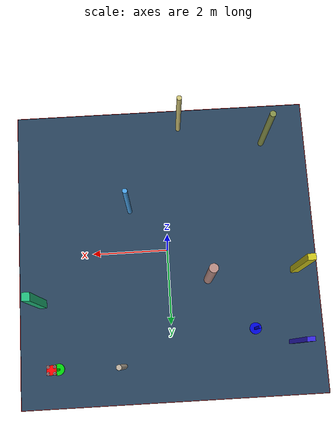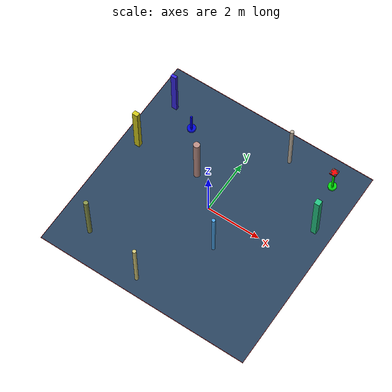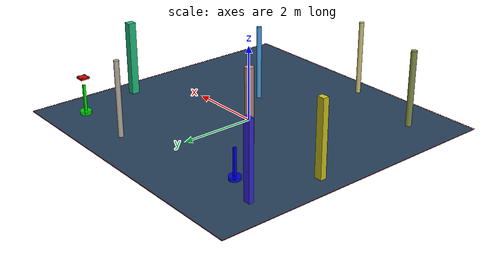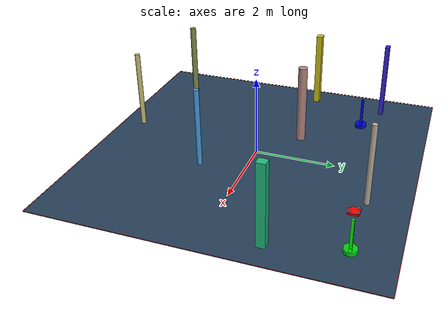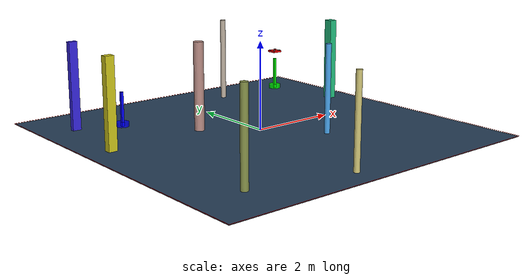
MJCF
<?xml version='1.0' encoding='utf-8'?>
<mujoco model="complex_uav_env">
  <compiler angle="degree" coordinate="local" inertiafromgeom="true" />
  <option integrator="RK4" timestep="0.01" />

  <visual>
    <headlight diffuse="0.6 0.6 0.6" ambient="0.3 0.3 0.3" />
    <rgba haze="0.15 0.25 0.35 1" />
    <global offwidth="2560" offheight="1440" />
  </visual>

  <asset>
    <texture type="skybox" builtin="gradient" rgb1="0.3 0.5 0.7" rgb2="0 0 0" width="512" height="3072" />
    <texture name="grid" type="2d" builtin="checker" rgb1="0.1 0.2 0.3" rgb2="0.2 0.3 0.4" width="512" height="512" />
    <material name="grid" texture="grid" texrepeat="1 1" />
  </asset>

  <worldbody>

    <geom name="ground" type="plane" size="4.0 4.0 0.1" material="grid" />
    <light name="light1" pos="0 0 4" dir="0 0 -1" diffuse="1 1 1" />

    <geom name="start_marker" type="cylinder" size="0.15 0.05" pos="3.0 3.0 0.05" rgba="0 1 0 0.8" />
    <geom name="start_pole" type="box" size="0.03 0.03 0.4" pos="3.0 3.0 0.4" rgba="0 1 0 1" />

    <geom name="goal_marker" type="cylinder" size="0.15 0.05" pos="-2.2065222367960224 2.2358551448515476 0.05" rgba="0 0 1 0.8" />
    <geom name="goal_pole" type="box" size="0.03 0.03 0.4" pos="-2.2065222367960224 2.2358551448515476 0.4" rgba="0 0 1 1" />

    <body name="chassis" pos="3.0 3.0 1.0">
      <joint type="free" name="root" />
      <geom type="box" size="0.12 0.12 0.02" rgba="1.0 0.0 0.0 1.0" mass="0.8" />

      <geom type="box" size="0.08 0.01 0.005" pos="0 0 0.01" rgba="0.3 0.3 0.3 1" />
      <geom type="box" size="0.01 0.08 0.005" pos="0 0 0.01" rgba="0.3 0.3 0.3 1" />

      <geom type="cylinder" size="0.015 0.02" pos="0.08 0.08 0.015" rgba="0.2 0.2 0.2 1" />
      <geom type="cylinder" size="0.015 0.02" pos="-0.08 0.08 0.015" rgba="0.2 0.2 0.2 1" />
      <geom type="cylinder" size="0.015 0.02" pos="0.08 -0.08 0.015" rgba="0.2 0.2 0.2 1" />
      <geom type="cylinder" size="0.015 0.02" pos="-0.08 -0.08 0.015" rgba="0.2 0.2 0.2 1" />

      <geom type="cylinder" size="0.04 0.002" pos="0.08 0.08 0.035" rgba="0.7 0.7 0.7 0.8" />
      <geom type="cylinder" size="0.04 0.002" pos="-0.08 0.08 0.035" rgba="0.7 0.7 0.7 0.8" />
      <geom type="cylinder" size="0.04 0.002" pos="0.08 -0.08 0.035" rgba="0.7 0.7 0.7 0.8" />
      <geom type="cylinder" size="0.04 0.002" pos="-0.08 -0.08 0.035" rgba="0.7 0.7 0.7 0.8" />

      <site name="motor1" pos="0.08 0.08 0" size="0.01" />
      <site name="motor2" pos="-0.08 0.08 0" size="0.01" />
      <site name="motor3" pos="0.08 -0.08 0" size="0.01" />
      <site name="motor4" pos="-0.08 -0.08 0" size="0.01" />
    </body>
    <geom name="test_obs_0" type="cylinder" size="0.06567100886712274 1.0" pos="1.2764360453841013 3.020246562522326 1.0" rgba="0.7241962168926385 0.6750991724265613 0.612469078736624 1.0" />
    <geom name="test_obs_1" type="box" size="0.09659324880302944 0.1033407163749265 1.0" pos="3.3820112825980666 1.2766894901554973 1.0" rgba="0.12809367947639672 0.7358511206607277 0.4879474734242515 1.0" />
    <geom name="test_obs_2" type="cylinder" size="0.11384282446771503 1.0" pos="-1.0509237117229064 0.8606144016826471 1.0" rgba="0.7046350287617739 0.5349631446911268 0.5050004817329399 1.0" />
    <geom name="test_obs_3" type="box" size="0.09918849210664918 0.05606072907281584 1.0" pos="-3.1650600945308227 2.6315008091904515 1.0" rgba="0.2060819735773678 0.14253043505469531 0.8602848627482773 1.0" />
    <geom name="test_obs_4" type="box" size="0.10129731277003448 0.07900916207183642 1.0" pos="-3.3816616019358614 0.7250432887524183 1.0" rgba="0.7952107726179662 0.7618199331459696 0.10167506250059244 1.0" />
    <geom name="test_obs_5" type="cylinder" size="0.0637526527965728 1.0" pos="-0.5026511954598097 -3.4544252184573163 1.0" rgba="0.7992334283298413 0.7566649077913356 0.4581052292361707 1.0" />
    <geom name="test_obs_6" type="cylinder" size="0.0790789149538182 1.0" pos="-2.7945109691859598 -2.8999953447894375 1.0" rgba="0.5148601921660514 0.5579497733095096 0.2796705114110896 1.0" />
    <geom name="test_obs_7" type="cylinder" size="0.06234299810773658 1.0" pos="0.9588324317033823 -1.1400763254392516 1.0" rgba="0.27871535930426355 0.6258700397054296 0.896916735112412 1.0" />
  <geom name="boundary_north" type="box" size="4.0 0.005 0.002" pos="0 4.0 0.002" rgba="1.0 0.0 0.0 1.0" /><geom name="boundary_south" type="box" size="4.0 0.005 0.002" pos="0 -4.0 0.002" rgba="1.0 0.0 0.0 1.0" /><geom name="boundary_east" type="box" size="0.005 4.0 0.002" pos="4.0 0 0.002" rgba="1.0 0.0 0.0 1.0" /><geom name="boundary_west" type="box" size="0.005 4.0 0.002" pos="-4.0 0 0.002" rgba="1.0 0.0 0.0 1.0" /></worldbody>

  <actuator>
    <motor name="m1" gear="0 0 1 0 0 0" site="motor1" />
    <motor name="m2" gear="0 0 1 0 0 0" site="motor2" />
    <motor name="m3" gear="0 0 1 0 0 0" site="motor3" />
    <motor name="m4" gear="0 0 1 0 0 0" site="motor4" />
  </actuator>
</mujoco>
